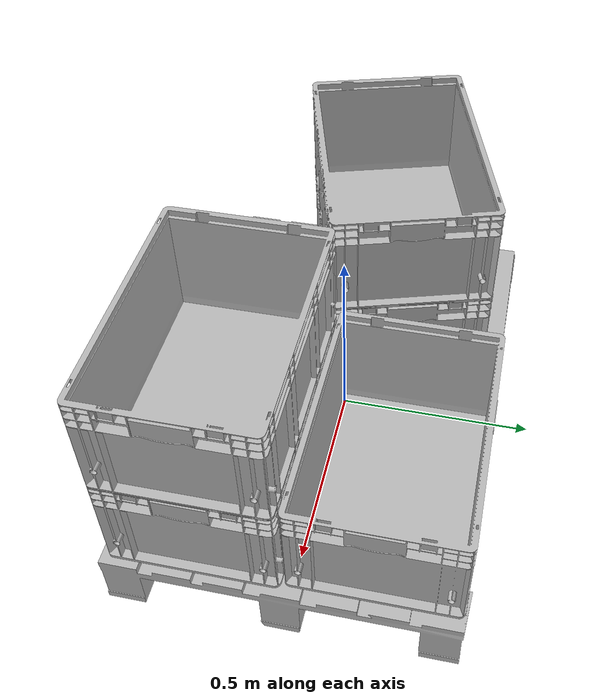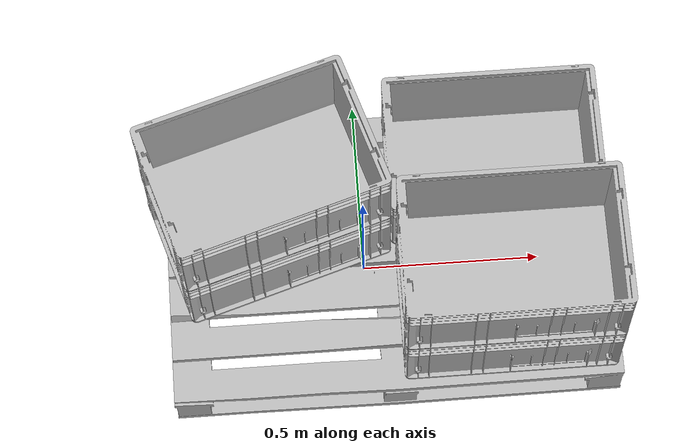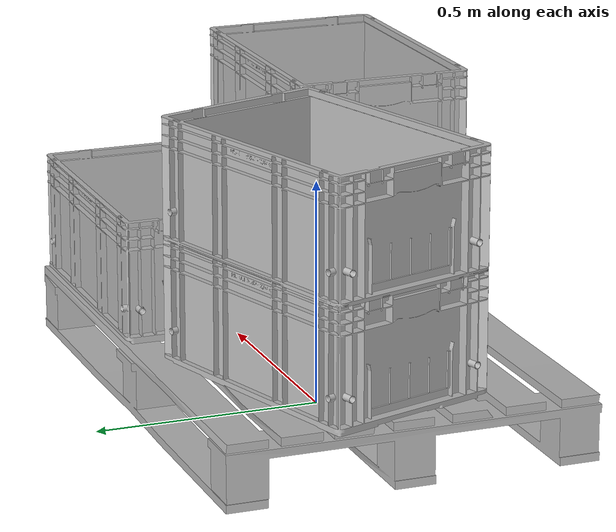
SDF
<?xml version="1.0" ?>
<sdf version="1.5">
  <model name="wooden_pallet_loaded_B">
    <include>
      <name>pallet</name>
      <uri>model://wooden_pallet</uri>
      <pose>0 0 0.1 0 0 0</pose>
    </include>
    <include>
      <name>klt_a</name>
      <uri>model://klt</uri>
      <pose>0.25 0.10 0.15 0 0 0</pose>
    </include>
    <include>
      <name>klt_b</name>
      <uri>model://klt_stack_2</uri>
      <pose>0.26 -0.30 0.13 0 0 0</pose>
    </include>
    <include>
      <name>klt_c</name>
      <uri>model://klt_stack_2</uri>
      <pose>-0.35 -0.05 0.13 0 0 0.30</pose>
    </include>
    <joint name="pallet_klt_a" type="fixed">
      <parent>pallet::link</parent>
      <child>klt_a::link</child>
      <axis>
        <xyz>0 0 1</xyz>
        <use_parent_model_frame>true</use_parent_model_frame>
      </axis>
    </joint>
    <joint name="pallet_klt_b" type="fixed">
      <parent>pallet::link</parent>
      <child>klt_b::klt_0::link</child>
      <axis>
        <xyz>0 0 1</xyz>
        <use_parent_model_frame>true</use_parent_model_frame>
      </axis>
    </joint>
    <joint name="pallet_klt_c" type="fixed">
      <parent>pallet::link</parent>
      <child>klt_c::klt_0::link</child>
      <axis>
        <xyz>0 0 1</xyz>
        <use_parent_model_frame>true</use_parent_model_frame>
      </axis>
    </joint>
  </model>
</sdf>

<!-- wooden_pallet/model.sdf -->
<sdf version="1.6">
  <model name="wooden pallet">
    <link name="link">
    <pose>0 0 0 1.57 0 1.57</pose>
      <inertial>
        <mass>20.0</mass>
        <inertia>
          <ixx>2.43</ixx>
          <ixy>0</ixy>
          <ixz>0</ixz>
          <iyy>1.10</iyy>
          <iyz>0</iyz>
          <izz>3.47</izz>
        </inertia>
      </inertial>
      <collision name="collision">
        <pose>0 0 0.05 0 0 0</pose>
        <geometry>
          <mesh>
            <scale>0.25 0.25 0.25</scale>
            <uri>model://wooden_pallet/meshes/pallet.obj</uri>
          </mesh>
        </geometry>
      </collision>
      <visual name="visual">
        <pose>0 0 0.05 0 0 0</pose>
        <geometry>
          <mesh>
            <scale>0.25 0.25 0.25</scale>
            <uri>model://wooden_pallet/meshes/pallet.obj</uri>
          </mesh>
        </geometry>
      </visual>
    </link>
  </model>
</sdf>

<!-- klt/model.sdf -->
<sdf version="1.6">
  <model name="KLT">
    <link name="link">
      <pose>0 0 0 0 0 0</pose>
      <inertial>
        <mass>1.0</mass>
        <inertia>
          <ixx>0.60</ixx>
          <ixy>0</ixy>
          <ixz>0</ixz>
          <iyy>0.40</iyy>
          <iyz>0</iyz>
          <izz>0.28</izz>
        </inertia>
      </inertial>
      <collision name="collision">
        <pose>0 0 0 0 0 0</pose>
        <geometry>
          <mesh>
            <scale>0.001 0.001 0.001</scale>
            <uri>model://klt/meshes/klt.obj</uri>
          </mesh>
        </geometry>
      </collision>
      <visual name="visual">
        <geometry>
          <mesh>
            <scale>0.001 0.001 0.001</scale>
            <uri>model://klt/meshes/klt.obj</uri>
          </mesh>
        </geometry>
      </visual>
    </link>
  </model>
</sdf>

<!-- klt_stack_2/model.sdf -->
<sdf version="1.5">
  <model name="klt_stack_2">
    <include>
      <name>klt_0</name>
      <uri>model://klt</uri>
      <pose>0 0 0.02 0 0 0</pose>
    </include>
    <include>
      <name>klt_1</name>
      <uri>model://klt</uri>
      <pose>0 0 0.28 0 0 0</pose>
    </include>
    <joint name="link_link" type="fixed">
      <parent>klt_1::link</parent>
      <child>klt_0::link</child>
      <axis>
        <xyz>0 0 1</xyz>
        <use_parent_model_frame>true</use_parent_model_frame>
      </axis>
    </joint>
  </model>
</sdf>
